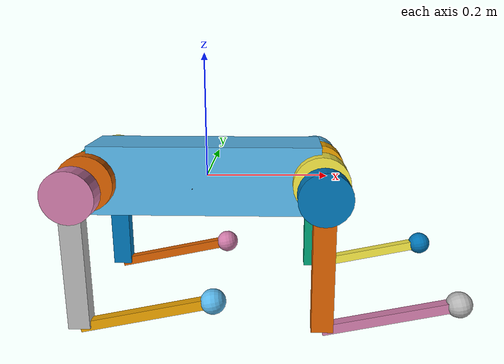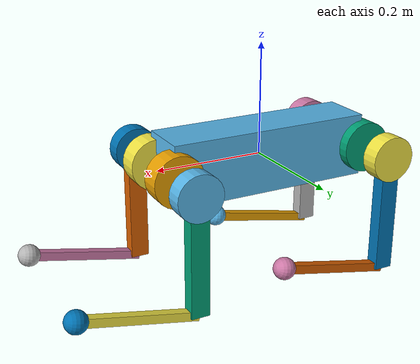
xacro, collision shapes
<?xml version="1.0" ?>
<!-- |    This document was autogenerated by xacro from robot.xacro                    | -->
<!-- |    EDITING THIS FILE BY HAND IS NOT RECOMMENDED                                 | -->
<robot name="go1_description">
  <material name="black">
    <color rgba="0.0 0.0 0.0 1.0"/>
  </material>
  <material name="blue">
    <color rgba="0.0 0.0 0.8 1.0"/>
  </material>
  <material name="green">
    <color rgba="0.0 0.8 0.0 1.0"/>
  </material>
  <material name="grey">
    <color rgba="0.2 0.2 0.2 1.0"/>
  </material>
  <material name="silver">
    <color rgba="0.9137254901960784 0.9137254901960784 0.8470588235294118 1.0"/>
  </material>
  <material name="orange">
    <color rgba="1.0 0.4235294117647059 0.0392156862745098 1.0"/>
  </material>
  <material name="brown">
    <color rgba="0.8705882352941177 0.8117647058823529 0.7647058823529411 1.0"/>
  </material>
  <material name="red">
    <color rgba="0.8 0.0 0.0 1.0"/>
  </material>
  <material name="white">
    <color rgba="1.0 1.0 1.0 1.0"/>
  </material>

  <gazebo reference="base">
    <material>Gazebo/Green</material>
    <turnGravityOff>false</turnGravityOff>
  </gazebo>

  <!-- FR4 friction -->
  <gazebo reference="FR_foot">
    <mu1>5.0</mu1>
    <mu2>5.0</mu2>
    <minDepth>0.0002</minDepth>
    <kp  value="1000000.0"/>
    <kd  value="10.0"/>
  </gazebo>

  <!-- FL4 friction -->
  <gazebo reference="FL_foot">
    <mu1>5.0</mu1>
    <mu2>5.0</mu2>
    <minDepth>0.0002</minDepth>
    <kp  value="1000000.0"/>
    <kd  value="10.0"/>
  </gazebo>

  <!-- RR4 friction -->
  <gazebo reference="RR_foot">
    <mu1>5.0</mu1>
    <mu2>5.0</mu2>
    <minDepth>0.0002</minDepth>
    <kp  value="1000000.0"/>
    <kd  value="10.0"/>
  </gazebo>

  <!-- RL4 friction -->
  <gazebo reference="RL_foot">
    <mu1>5.0</mu1>
    <mu2>5.0</mu2>
    <minDepth>0.0002</minDepth>
    <kp  value="1000000.0"/>
    <kd  value="10.0"/>
  </gazebo>

  <link name="base">
  </link>

  <joint name="floating_base" type="fixed">
    <origin rpy="0 0 0" xyz="0 0 0"/>
    <parent link="base"/>
    <child link="trunk"/>
  </joint>

  <link name="trunk">
    <visual>
      <origin rpy="0 0 0" xyz="0 0 0"/>
      <geometry>
        <mesh filename="file://$(find go1_description)/meshes/trunk.dae" scale="1 1 1"/>
      </geometry>
    </visual>

    <collision>
      <origin rpy="0 0 0" xyz="0 0 0"/>
      <geometry>
        <box size="0.3762 0.0935 0.114"/>
      </geometry>
    </collision>

    <inertial>
      <origin rpy="0 0 0" xyz="0.0223 0.002 -0.0005"/>
      <mass value="10"/>
      <inertia ixx="0.06015" ixy="0.0" ixz="0.0" iyy="0.05092" iyz="0.0" izz="0.04939"/>
    </inertial>
  </link>
  <joint name="imu_joint" type="fixed">
    <parent link="trunk"/>
    <child link="imu_link"/>
    <origin rpy="0 0 0" xyz="-0.01592 -0.06659 -0.00617"/>
  </joint>

    <link name="imu_link">
      <inertial>
        <mass value="0.01"/>
        <origin rpy="0 0 0" xyz="0 0 0"/>
        <inertia ixx="0.16667" ixy="0.0" ixz="0.0" iyy="0.16667" iyz="0.0" izz="0.16667"/>
      </inertial>
      <visual>
        <origin rpy="0 0 0" xyz="0 0 0"/>
        <geometry>
          <box size="0.001 0.001 0.001"/>
        </geometry>
      </visual>
      <collision>
        <origin rpy="0 0 0" xyz="0 0 0"/>
        <geometry>
          <box size=".001 .001 .001"/>
        </geometry>
      </collision>

    </link>

  <joint name="FR_hip_joint" type="revolute">
    <origin rpy="0 0 0" xyz="0.1881 -0.04675 0"/>
    <parent link="trunk"/>
    <child link="FR_hip"/>
    <axis xyz="1 0 0"/>
    <dynamics damping="0.0" friction="0.0"/>
    <limit effort="23.7" lower="-1.0471975511965976" upper="1.0471975511965976" velocity="30.1"/>
  </joint>
  <link name="FR_hip">
    <visual>
      <origin rpy="3.141592653589793 0 0" xyz="0 0 0"/>
      <geometry>
        <mesh filename="file://$(find go1_description)/meshes/hip.dae" scale="1 1 1"/>
      </geometry>
    </visual>
    <collision>
      <origin rpy="1.5707963267948966 0 0" xyz="0 0 0"/>
      <geometry>
        <cylinder length="0.04" radius="0.046"/>
      </geometry>
    </collision>
    <inertial>
      <origin rpy="0 0 0" xyz="-0.00541 0.00074 6e-06"/>
      <mass value="0.591"/>
      <inertia ixx="0.392" ixy="0.0" ixz="0.0" iyy="0.392" iyz="0.0" izz="0.63"/>
    </inertial>
  </link>
  <joint name="FR_hip_fixed" type="fixed">
    <origin rpy="0 0 0" xyz="0 -0.08 0"/>
    <parent link="FR_hip"/>
    <child link="FR_thigh_shoulder"/>
  </joint>

  <!-- this link is only for collision -->
  <link name="FR_thigh_shoulder">
    <collision>
      <origin rpy="1.5707963267948966 0 0" xyz="0 0 0"/>
      <geometry>
        <cylinder length="0.032" radius="0.041"/>
      </geometry>
    </collision>
  </link>
  <joint name="FR_thigh_joint" type="revolute">
    <origin rpy="0 0 0" xyz="0 -0.08 0"/>
    <parent link="FR_hip"/>
    <child link="FR_thigh"/>
    <axis xyz="0 1 0"/>
    <dynamics damping="0.0" friction="0.0"/>
    <limit effort="23.7" lower="-0.6632251157578452" upper="2.9670597283903604" velocity="30.1"/>
  </joint>
  <link name="FR_thigh">
    <visual>
      <origin rpy="0 0 0" xyz="0 0 0"/>
      <geometry>
        <mesh filename="file://$(find go1_description)/meshes/thigh_mirror.dae" scale="1 1 1"/>
      </geometry>
    </visual>
    <collision>
      <origin rpy="0 1.5707963267948966 0" xyz="0 0 -0.1065"/>
      <geometry>
        <box size="0.213 0.0245 0.034"/>
      </geometry>
    </collision>
    <inertial>
      <origin rpy="0 0 0" xyz="-0.003468 0.018947 -0.032736"/>
      <mass value="0.92"/>
      <inertia ixx="0.135" ixy="0.0" ixz="0.0" iyy="0.3568" iyz="0.0" izz="0.3527"/>
    </inertial>
  </link>

  <joint name="FR_calf_joint" type="revolute">
    <origin rpy="0 0 0" xyz="0 0 -0.213"/>
    <parent link="FR_thigh"/>
    <child link="FR_calf"/>
    <axis xyz="0 1 0"/>
    <dynamics damping="0.0" friction="0.0"/>
    <limit effort="23.7" lower="-2.722713633111154" upper="-0.8377580409572781" velocity="30.1"/>
  </joint>
  <link name="FR_calf">
    <visual>
      <origin rpy="0 0 0" xyz="0 0 0"/>
      <geometry>
        <mesh filename="file://$(find go1_description)/meshes/calf.dae" scale="1 1 1"/>
      </geometry>
    </visual>
    <collision>
      <origin rpy="0 1.5707963267948966 0" xyz="0 0 -0.1065"/>
      <geometry>
        <box size="0.213 0.016 0.016"/>
      </geometry>
    </collision>
    <inertial>
      <origin rpy="0 0 0" xyz="0.006286 0.001307 -0.122269"/>
      <mass value="0.131"/>
      <inertia ixx="0.56" ixy="0.0" ixz="0.0" iyy="0.4985" iyz="0.0" izz="0.4985"/>
 <!-- Инерция -->
    </inertial>

  </link>
  <joint name="FR_foot_fixed" type="fixed">
    <origin rpy="0 0 0" xyz="0 0 -0.213"/>
    <parent link="FR_calf"/>
    <child link="FR_foot"/>
    <dynamics damping="0.7" friction="0.1"/>
  </joint>

  <link name="FR_foot">
    <visual>
      <origin rpy="0 0 0" xyz="0 0 0"/>
      <geometry>
        <sphere radius="0.01"/>
      </geometry>
    </visual>
    <collision>
      <origin rpy="0 0 0" xyz="0 0 0"/>
      <geometry>
        <sphere radius="0.02"/>
      </geometry>
    </collision>
    <inertial>
      <mass value="0.6"/>
      <inertia ixx="0.9600000000000001" ixy="0.0" ixz="0.0" iyy="0.9600000000000001" iyz="0.0" izz="0.960000000000000"/>
 <!-- Инерция -->
    </inertial>
  </link>

  <joint name="FL_hip_joint" type="revolute">
    <origin rpy="0 0 0" xyz="0.1881 0.04675 0"/>
    <parent link="trunk"/>
    <child link="FL_hip"/>
    <axis xyz="1 0 0"/>
    <dynamics damping="0.0" friction="0.0"/>
    <limit effort="23.7" lower="-1.0471975511965976" upper="1.0471975511965976" velocity="30.1"/>
  </joint>
  <link name="FL_hip">
    <visual>
      <origin rpy="0 0 0" xyz="0 0 0"/>
      <geometry>
        <mesh filename="file://$(find go1_description)/meshes/hip.dae" scale="1 1 1"/>
      </geometry>
    </visual>
    <collision>
      <origin rpy="1.5707963267948966 0 0" xyz="0 0 0"/>
      <geometry>
        <cylinder length="0.04" radius="0.046"/>
      </geometry>
    </collision>
    <inertial>
      <origin rpy="0 0 0" xyz="-0.00541 -0.00074 6e-06"/>
      <mass value="0.591"/>
      <inertia ixx="0.392" ixy="0.0" ixz="0.0" iyy="0.392" iyz="0.0" izz="0.63"/>
 <!-- Инерция -->
    </inertial>
  </link>
  <joint name="FL_hip_fixed" type="fixed">
    <origin rpy="0 0 0" xyz="0 0.08 0"/>
    <parent link="FL_hip"/>
    <child link="FL_thigh_shoulder"/>
  </joint>
  <!-- this link is only for collision -->
  <link name="FL_thigh_shoulder">
    <collision>
      <origin rpy="1.5707963267948966 0 0" xyz="0 0 0"/>
      <geometry>
        <cylinder length="0.032" radius="0.041"/>
      </geometry>
    </collision>
  </link>
  <joint name="FL_thigh_joint" type="revolute">
    <origin rpy="0 0 0" xyz="0 0.08 0"/>
    <parent link="FL_hip"/>
    <child link="FL_thigh"/>
    <axis xyz="0 1 0"/>
    <dynamics damping="0.0" friction="0.0"/>
    <limit effort="23.7" lower="-0.6632251157578452" upper="2.9670597283903604" velocity="30.1"/>
  </joint>

  <link name="FL_thigh">
    <visual>
      <origin rpy="0 0 0" xyz="0 0 0"/>
      <geometry>
        <mesh filename="file://$(find go1_description)/meshes/thigh.dae" scale="1 1 1"/>
      </geometry>
    </visual>
    <collision>
      <origin rpy="0 1.5707963267948966 0" xyz="0 0 -0.1065"/>
      <geometry>
        <box size="0.213 0.0245 0.034"/>
      </geometry>
    </collision>
    <inertial>
      <origin rpy="0 0 0" xyz="-0.003468 -0.018947 -0.032736"/>
      <mass value="0.92"/>
      <inertia ixx="0.135" ixy="0.0" ixz="0.0" iyy="0.3568" iyz="0.0" izz="0.3527"/>
 <!-- Инерция -->
    </inertial>
  </link>
  <joint name="FL_calf_joint" type="revolute">
    <origin rpy="0 0 0" xyz="0 0 -0.213"/>
    <parent link="FL_thigh"/>
    <child link="FL_calf"/>
    <axis xyz="0 1 0"/>
    <dynamics damping="0.0" friction="0.0"/>
    <limit effort="23.7" lower="-2.722713633111154" upper="-0.8377580409572781" velocity="30.1"/>
  </joint>

  <link name="FL_calf">
    <visual>
      <origin rpy="0 0 0" xyz="0 0 0"/>
      <geometry>
        <mesh filename="file://$(find go1_description)/meshes/calf.dae" scale="1 1 1"/>
      </geometry>
    </visual>
    <collision>
      <origin rpy="0 1.5707963267948966 0" xyz="0 0 -0.1065"/>
      <geometry>
        <box size="0.213 0.016 0.016"/>
      </geometry>
    </collision>
    <inertial>
      <origin rpy="0 0 0" xyz="0.006286 0.001307 -0.122269"/>
      <mass value="0.131"/>
      <inertia ixx="0.56" ixy="0.0" ixz="0.0" iyy="0.4985" iyz="0.0" izz="0.4985"/>
 <!-- Инерция -->
    </inertial>
  </link>
  <joint name="FL_foot_fixed" type="fixed">
    <origin rpy="0 0 0" xyz="0 0 -0.213"/>
    <parent link="FL_calf"/>
    <child link="FL_foot"/>
    <dynamics damping="0.7" friction="0.1"/>
  </joint>

  <link name="FL_foot">
    <visual>
      <origin rpy="0 0 0" xyz="0 0 0"/>
      <geometry>
        <sphere radius="0.01"/>
      </geometry>
    </visual>
    <collision>
      <origin rpy="0 0 0" xyz="0 0 0"/>
      <geometry>
        <sphere radius="0.02"/>
      </geometry>
    </collision>
    <inertial>
      <mass value="0.6"/>
      <inertia ixx="0.9600000000000001" ixy="0.0" ixz="0.0" iyy="0.9600000000000001" iyz="0.0" izz="0.960000000000000"/>
 <!-- Инерция -->
    </inertial>
  </link>

  <joint name="RR_hip_joint" type="revolute">
    <origin rpy="0 0 0" xyz="-0.1881 -0.04675 0"/>
    <parent link="trunk"/>
    <child link="RR_hip"/>
    <axis xyz="1 0 0"/>
    <dynamics damping="0.0" friction="0.0"/>
    <limit effort="23.7" lower="-1.0471975511965976" upper="1.0471975511965976" velocity="30.1"/>
  </joint>
  <link name="RR_hip">
    <visual>
      <origin rpy="3.141592653589793 3.141592653589793 0" xyz="0 0 0"/>
      <geometry>
        <mesh filename="file://$(find go1_description)/meshes/hip.dae" scale="1 1 1"/>
      </geometry>
    </visual>
    <collision>
      <origin rpy="1.5707963267948966 0 0" xyz="0 0 0"/>
      <geometry>
        <cylinder length="0.04" radius="0.046"/>
      </geometry>
    </collision>
    <inertial>
      <origin rpy="0 0 0" xyz="0.00541 0.00074 6e-06"/>
      <mass value="0.591"/>
      <inertia ixx="0.392" ixy="0.0" ixz="0.0" iyy="0.392" iyz="0.0" izz="0.63"/>
 <!-- Инерция -->
    </inertial>
  </link>
  <joint name="RR_hip_fixed" type="fixed">
    <origin rpy="0 0 0" xyz="0 -0.08 0"/>
    <parent link="RR_hip"/>
    <child link="RR_thigh_shoulder"/>
  </joint>
  <!-- this link is only for collision -->
  <link name="RR_thigh_shoulder">
    <collision>
      <origin rpy="1.5707963267948966 0 0" xyz="0 0 0"/>
      <geometry>
        <cylinder length="0.032" radius="0.041"/>
      </geometry>
    </collision>
  </link>
  <joint name="RR_thigh_joint" type="revolute">
    <origin rpy="0 0 0" xyz="0 -0.08 0"/>
    <parent link="RR_hip"/>
    <child link="RR_thigh"/>
    <axis xyz="0 1 0"/>
    <dynamics damping="0.0" friction="0.0"/>
    <limit effort="23.7" lower="-0.6632251157578452" upper="2.9670597283903604" velocity="30.1"/>
  </joint>

  <link name="RR_thigh">
    <visual>
      <origin rpy="0 0 0" xyz="0 0 0"/>
      <geometry>
        <mesh filename="file://$(find go1_description)/meshes/thigh_mirror.dae" scale="1 1 1"/>
      </geometry>
    </visual>
    <collision>
      <origin rpy="0 1.5707963267948966 0" xyz="0 0 -0.1065"/>
      <geometry>
        <box size="0.213 0.0245 0.034"/>
      </geometry>
    </collision>
    <inertial>
      <origin rpy="0 0 0" xyz="-0.003468 0.018947 -0.032736"/>
      <mass value="0.92"/>
      <inertia ixx="0.135" ixy="0.0" ixz="0.0" iyy="0.3568" iyz="0.0" izz="0.3527"/>
    </inertial>
  </link>
  <joint name="RR_calf_joint" type="revolute">
    <origin rpy="0 0 0" xyz="0 0 -0.213"/>
    <parent link="RR_thigh"/>
    <child link="RR_calf"/>
    <axis xyz="0 1 0"/>
    <dynamics damping="0.0" friction="0.0"/>
    <limit effort="23.7" lower="-2.722713633111154" upper="-0.8377580409572781" velocity="30.1"/>
  </joint>
  <link name="RR_calf">
    <visual>
      <origin rpy="0 0 0" xyz="0 0 0"/>
      <geometry>
        <mesh filename="file://$(find go1_description)/meshes/calf.dae" scale="1 1 1"/>
      </geometry>
    </visual>
    <collision>
      <origin rpy="0 1.5707963267948966 0" xyz="0 0 -0.1065"/>
      <geometry>
        <box size="0.213 0.016 0.016"/>
      </geometry>
    </collision>
    <inertial>
      <origin rpy="0 0 0" xyz="0.006286 0.001307 -0.122269"/>
      <mass value="0.131"/>
      <inertia ixx="0.56" ixy="0.0" ixz="0.0" iyy="0.4985" iyz="0.0" izz="0.4985"/>
 <!-- Инерция -->
    </inertial>
  </link>
  <joint name="RR_foot_fixed" type="fixed">
    <origin rpy="0 0 0" xyz="0 0 -0.213"/>
    <parent link="RR_calf"/>
    <child link="RR_foot"/>
    <dynamics damping="0.7" friction="0.1"/>
  </joint>

  <link name="RR_foot">
    <visual>
      <origin rpy="0 0 0" xyz="0 0 0"/>
      <geometry>
        <sphere radius="0.01"/>
      </geometry>
    </visual>
    <collision>
      <origin rpy="0 0 0" xyz="0 0 0"/>
      <geometry>
        <sphere radius="0.02"/>
      </geometry>
    </collision>
    <inertial>
      <mass value="0.6"/>
      <inertia ixx="0.9600000000000001" ixy="0.0" ixz="0.0" iyy="0.9600000000000001" iyz="0.0" izz="0.960000000000000"/>
 <!-- Инерция -->
    </inertial>
  </link>

  <joint name="RL_hip_joint" type="revolute">
    <origin rpy="0 0 0" xyz="-0.1881 0.04675 0"/>
    <parent link="trunk"/>
    <child link="RL_hip"/>
    <axis xyz="1 0 0"/>
    <dynamics damping="0.0" friction="0.0"/>
    <limit effort="23.7" lower="-1.0471975511965976" upper="1.0471975511965976" velocity="30.1"/>
  </joint>
  <link name="RL_hip">
    <visual>
      <origin rpy="0 3.141592653589793 0" xyz="0 0 0"/>
      <geometry>
        <mesh filename="file://$(find go1_description)/meshes/hip.dae" scale="1 1 1"/>
      </geometry>
    </visual>
    <collision>
      <origin rpy="1.5707963267948966 0 0" xyz="0 0 0"/>
      <geometry>
        <cylinder length="0.04" radius="0.046"/>
      </geometry>
    </collision>
    <inertial>
      <origin rpy="0 0 0" xyz="0.00541 -0.00074 6e-06"/>
      <mass value="0.591"/>
      <inertia ixx="0.392" ixy="0.0" ixz="0.0" iyy="0.392" iyz="0.0" izz="0.63"/>
 <!-- Инерция -->
    </inertial>
  </link>
  <joint name="RL_hip_fixed" type="fixed">
    <origin rpy="0 0 0" xyz="0 0.08 0"/>
    <parent link="RL_hip"/>
    <child link="RL_thigh_shoulder"/>
  </joint>
  <!-- this link is only for collision -->
  <link name="RL_thigh_shoulder">
    <collision>
      <origin rpy="1.5707963267948966 0 0" xyz="0 0 0"/>
      <geometry>
        <cylinder length="0.032" radius="0.041"/>
      </geometry>
    </collision>
  </link>
  <joint name="RL_thigh_joint" type="revolute">
    <origin rpy="0 0 0" xyz="0 0.08 0"/>
    <parent link="RL_hip"/>
    <child link="RL_thigh"/>
    <axis xyz="0 1 0"/>
    <dynamics damping="0.0" friction="0.0"/>
    <limit effort="23.7" lower="-0.6632251157578452" upper="2.9670597283903604" velocity="30.1"/>
  </joint>
  <link name="RL_thigh">
    <visual>
      <origin rpy="0 0 0" xyz="0 0 0"/>
      <geometry>
        <mesh filename="file://$(find go1_description)/meshes/thigh.dae" scale="1 1 1"/>
      </geometry>
    </visual>
    <collision>
      <origin rpy="0 1.5707963267948966 0" xyz="0 0 -0.1065"/>
      <geometry>
        <box size="0.213 0.0245 0.034"/>
      </geometry>
    </collision>
    <inertial>
      <origin rpy="0 0 0" xyz="-0.003468 -0.018947 -0.032736"/>
      <mass value="0.92"/>
      <inertia ixx="0.135" ixy="0.0" ixz="0.0" iyy="0.3568" iyz="0.0" izz="0.3527"/>
 <!-- Инерция -->
    </inertial>
  </link>
  <joint name="RL_calf_joint" type="revolute">
    <origin rpy="0 0 0" xyz="0 0 -0.213"/>
    <parent link="RL_thigh"/>
    <child link="RL_calf"/>
    <axis xyz="0 1 0"/>
    <dynamics damping="0.0" friction="0.0"/>
    <limit effort="23.7" lower="-2.722713633111154" upper="-0.8377580409572781" velocity="30.1"/>
  </joint>
  <link name="RL_calf">
    <visual>
      <origin rpy="0 0 0" xyz="0 0 0"/>
      <geometry>
        <mesh filename="file://$(find go1_description)/meshes/calf.dae" scale="1 1 1"/>
      </geometry>
    </visual>
    <collision>
      <origin rpy="0 1.5707963267948966 0" xyz="0 0 -0.1065"/>
      <geometry>
        <box size="0.213 0.016 0.016"/>
      </geometry>
    </collision>
    <inertial>
      <origin rpy="0 0 0" xyz="0.006286 0.001307 -0.122269"/>
      <mass value="0.131"/>
      <inertia ixx="0.056" ixy="0.0" ixz="0.0" iyy="0.4985" iyz="0.0" izz="0.4985"/>
 <!-- Инерция -->
    </inertial>
  </link>
  <joint name="RL_foot_fixed" type="fixed">
    <origin rpy="0 0 0" xyz="0 0 -0.213"/>
    <parent link="RL_calf"/>
    <child link="RL_foot"/>
    <dynamics damping="0.7" friction="0.1"/>
  </joint>
  <link name="RL_foot">
    <visual>
      <origin rpy="0 0 0" xyz="0 0 0"/>
      <geometry>
        <sphere radius="0.01"/>
      </geometry>
    </visual>
    <collision>
      <origin rpy="0 0 0" xyz="0 0 0"/>
      <geometry>
        <sphere radius="0.02"/>
      </geometry>
    </collision>
    <inertial>
      <mass value="0.6"/>
      <inertia ixx="0.9600000000000001" ixy="0.0" ixz="0.0" iyy="0.9600000000000001" iyz="0.0" izz="0.960000000000000"/>
 <!-- Инерция -->
    </inertial>
  </link>

  <ros2_control name="IgnitionSystem" type="system">
    <hardware>
      <plugin>ign_ros2_control/IgnitionSystem</plugin>
    </hardware>

    <joint name="FL_hip_joint">
      <command_interface name="position"/>

      <state_interface name="position"/>
      <state_interface name="velocity"/>
      <state_interface name="effort"/>
    </joint>
    <joint name="FL_thigh_joint">
      <command_interface name="position"/>

      <state_interface name="position"/>
      <state_interface name="velocity"/>
      <state_interface name="effort"/>
    </joint>
    <joint name="FL_calf_joint">
      <command_interface name="position"/>

      <state_interface name="position"/>
      <state_interface name="velocity"/>
      <state_interface name="effort"/>
    </joint>

    <joint name="FR_hip_joint">
      <command_interface name="position"/>

      <state_interface name="position"/>
      <state_interface name="velocity"/>
      <state_interface name="effort"/>
    </joint>
    <joint name="FR_thigh_joint">
      <command_interface name="position"/>

      <state_interface name="position"/>
      <state_interface name="velocity"/>
      <state_interface name="effort"/>
    </joint>
    <joint name="FR_calf_joint">
      <command_interface name="position"/>

      <state_interface name="position"/>
      <state_interface name="velocity"/>
      <state_interface name="effort"/>
    </joint>

    <joint name="RL_hip_joint">
      <command_interface name="position"/>

      <state_interface name="position"/>
      <state_interface name="velocity"/>
      <state_interface name="effort"/>
    </joint>
    <joint name="RL_thigh_joint">
      <command_interface name="position"/>

      <state_interface name="position"/>
      <state_interface name="velocity"/>
      <state_interface name="effort"/>
    </joint>
    <joint name="RL_calf_joint">
      <command_interface name="position"/>

      <state_interface name="position"/>
      <state_interface name="velocity"/>
      <state_interface name="effort"/>
    </joint>

    <joint name="RR_hip_joint">
      <command_interface name="position"/>

      <state_interface name="position"/>
      <state_interface name="velocity"/>
      <state_interface name="effort"/>
    </joint>
    <joint name="RR_thigh_joint">
      <command_interface name="position"/>

      <state_interface name="position"/>
      <state_interface name="velocity"/>
      <state_interface name="effort"/>
    </joint>
    <joint name="RR_calf_joint">
      <command_interface name="position"/>

      <state_interface name="position"/>
      <state_interface name="velocity"/>
      <state_interface name="effort"/>
    </joint>

  </ros2_control>

  <gazebo reference="imu_link">
    <material>Gazebo/Black</material>
    <gravity>false</gravity>
    <sensor name="imu_sensor" type="imu">
        <always_on>true</always_on>
        <update_rate>100</update_rate>
        <visualize>false</visualize>
        <topic>/imu_plugin/out</topic>
          <plugin filename="libignition-gazebo-imu-system.so" name="ignition::gazebo::systems::Imu">
        </plugin>
        <pose>0 0 0 0 0 0</pose>
        <gz_frame_id>imu_link</gz_frame_id> <!-- Добавьте этот тег для указания кадра -->
    </sensor>
  </gazebo>

  <gazebo>
      <plugin filename="ign_ros2_control-system" name="ign_ros2_control::IgnitionROS2ControlPlugin">
        <robot_param>robot_description</robot_param>
        <robot_param_node>robot_state_publisher</robot_param_node>
        <parameters>$(find go1_description)/config/robot_control.yaml</parameters>
      </plugin>
  </gazebo>
</robot>
